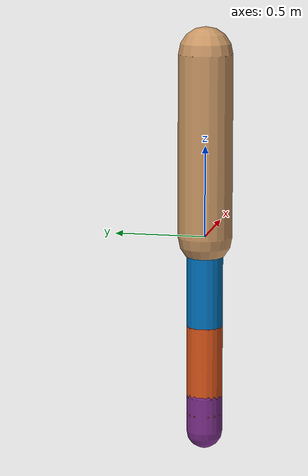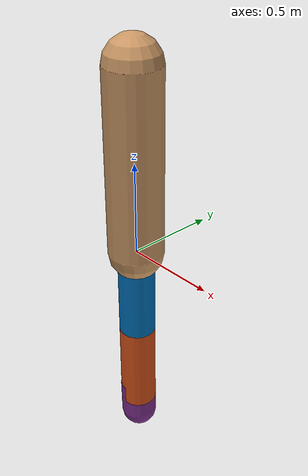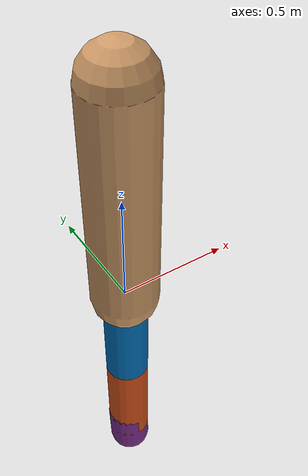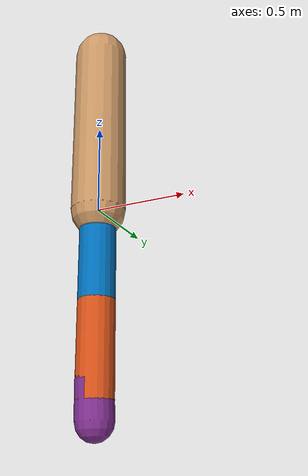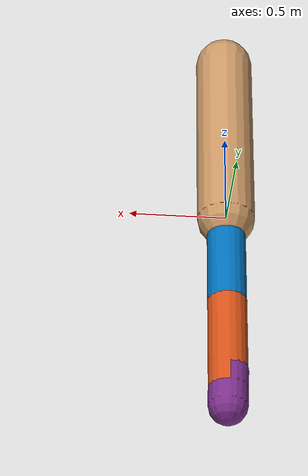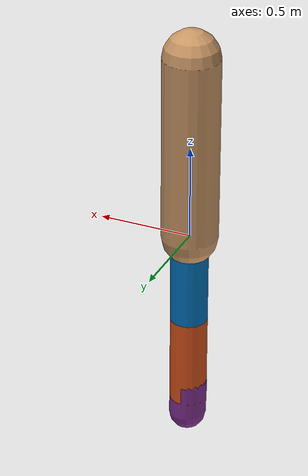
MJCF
<mujoco model="sustech_biped2d">
    <compiler angle="degree" coordinate="local" inertiafromgeom="true"/>
    <default>
        <joint armature="0" damping="0.0" limited="true" solimplimit="0 .8 .03" solreflimit=".02 1" stiffness="0"/>
        <geom conaffinity="0" condim="3" contype="1" friction=".9 .1 .1" rgba="0.8 0.6 .4 1" solimp="0.0 0.8 0.01"
              solref="0.02 1"/>
    </default>
    <size nstack="300000" nuser_geom="1"/>
    <option gravity="0 0 -9.81" timestep="0.002"/>
    <worldbody>
        <!--躯干在世界坐标系的位置-->
        <body name="torso" pos="0 0 0">
            <joint armature="0" axis="1 0 0" damping="0" limited="false" name="rootx" pos="0 0 0" stiffness="0"
                   type="slide"/>
            <joint armature="0" axis="0 0 1" damping="0" limited="false" name="rootz" pos="0 0 0" stiffness="0"
                   type="slide"/>
            <joint armature="0" axis="0 -1 0" damping="0" limited="false" name="rooty" pos="0 0 0" stiffness="0"
                   type="hinge"/>
            <!--from to 设置拉伸起止点,从000拉到001-->
            <!--size 设置圆柱半径-->
            <geom fromto="0 0 0 0 0 1" name="torso" size="0.15" type="capsule"/>
            <!--不设置inertial会根据几何形状自动推断-->
            <!--子刚体坐标系位置在父刚体坐标系中的位置-->
            <body name="lthigh" pos="0 0 0">
                <joint axis="0 -1 0" damping="0.0" name="lthigh" pos="0 0 0" range="-45 135" stiffness="0"
                       type="hinge"/>
                <!--axisangle为旋转对应的xyza，默认即可-->
                <!--pos为大腿几何中心在父坐标系位置-->
                <!--size为半径和半轴长-->
                <geom axisangle="1 0 0 0" name="lthigh" pos="0 0 -0.25" rgba="0 0.4470 0.7410 1"
                      size="0.1 0.25" type="capsule"/>
                <inertial pos="0 0 -0.15" mass="10"/>
                <body name="lshin" pos="0 0 -0.5">
                    <joint axis="0 -1 0" damping="0.0" name="lshin" pos="0 0 0" range="-135 0" stiffness="0"
                           type="hinge"/>
                    <inertial pos="0 0 -0.25" mass="10"/>
                    <geom axisangle="1 0 0 0" name="lshin" pos="0 0 -0.25" rgba="0.8500 0.3250 0.0980 1"
                          size="0.1 0.25" type="capsule"/>
                    <body name="lfoot" pos="0 0 -0.5">
                        <joint axis="0 -1 0" damping="0.0" name="lfoot" pos="0 0 0" range="-80 80" stiffness="0"
                               type="hinge"/>
                        <inertial pos="0 0 0" axisangle="0 -1 0 90" mass="5"/>
                        <geom axisangle="0 -1 0 1.5707963267948966" name="lfoot" pos="0 0 0" rgba="0.4940  0.1840 0.5560 1"
                              size="0.1 0.1" type="capsule"/>
                    </body>
                </body>
            </body>
            <body name="rthigh" pos="0 0 0">
                <joint axis="0 -1 0" damping="0.0" name="rthigh" pos="0 0 0" range="-45 135" stiffness="0"
                       type="hinge"/>
                <inertial pos="0 0 -0.25" mass="10"/>
                <geom axisangle="0 -1 0 0" name="rthigh" pos="0 0 -0.25" rgba="0.8500 0.3250 0.0980 1"
                      size="0.1 0.25" type="capsule"/>
                <body name="rshin" pos="0 0 -0.5">
                    <joint axis="0 -1 0" damping="0.0" name="rshin" pos="0 0 0" range="-135 0" stiffness="0"
                           type="hinge"/>
                    <inertial pos="0 0 -0.25" mass="10"/>
                    <geom axisangle="0 -1 0 0" name="rshin" pos="0 0 -0.25" rgba="0.4940 0.1840 0.5560 1"
                          size="0.1 0.25" type="capsule"/>
                    <body name="rfoot" pos="0 0 -0.5">
                        <joint axis="0 -1 0" damping="0.0" name="rfoot" pos="0 0 0" range="-80 80" stiffness="0"
                               type="hinge"/>
                        <inertial pos="0 0 0" axisangle="0 -1 0 90" mass="5" diaginertia="0.0007 0.0007 0.00009"/>
                        <geom axisangle="0 -1 0 1.5707963267948966" name="rfoot" pos="0 0 0" rgba="0 0.4470 0.7410 1"
                              size="0.1 0.1" type="capsule"/>
                    </body>
                </body>
            </body>
        </body>
    </worldbody>
    <actuator>
        <motor ctrllimited="true" ctrlrange="-100.0 100.0" gear="1" joint="lthigh" name="lthigh"/>
        <motor ctrllimited="true" ctrlrange="-100.0 100.0" gear="1" joint="lshin" name="lshin"/>
        <motor ctrllimited="true" ctrlrange="-100.0 100.0" gear="1" joint="lfoot" name="lfoot"/>
        <motor ctrllimited="true" ctrlrange="-100.0 100.0" gear="1" joint="rthigh" name="rthigh"/>
        <motor ctrllimited="true" ctrlrange="-100.0 100.0" gear="1" joint="rshin" name="rshin"/>
        <motor ctrllimited="true" ctrlrange="-100.0 100.0" gear="1" joint="rfoot" name="rfoot"/>
    </actuator>
</mujoco>
